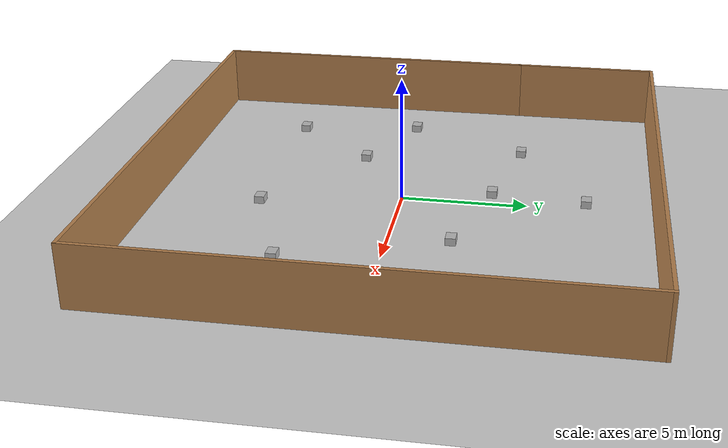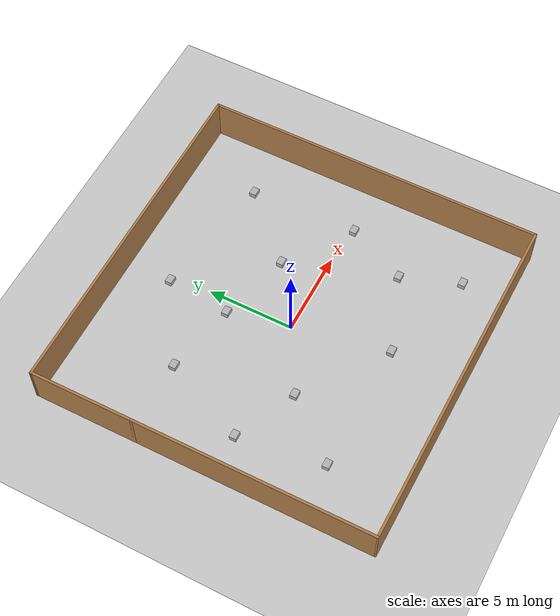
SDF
<sdf version="1.7">
 <world name="default">
  <light name="sun" type="directional">
   <pose>0 0 10 0 -0 0</pose>
   <diffuse>0.8 0.8 0.8 1</diffuse>
   <specular>0.2 0.2 0.2 1</specular>
   <attenuation>
    <range>1000</range>
    <constant>0.9</constant>
    <linear>0.01</linear>
    <quadratic>0.001</quadratic>
   </attenuation>
   <direction>-0.5 0.1 -0.9</direction>
   <spot><inner_angle>0</inner_angle><outer_angle>0</outer_angle><falloff>0</falloff></spot>
  </light>
  <model name="ground_plane">
   <static>1</static>
   <link name="link">
    <collision name="collision">
     <geometry><plane><normal>0 0 1</normal><size>100 100</size></plane></geometry>
     <surface>
      <contact><collide_bitmask>65535</collide_bitmask></contact>
      <friction><ode><mu>100</mu><mu2>50</mu2></ode></friction>
     </surface>
    </collision>
    <visual name="visual">
     <cast_shadows>0</cast_shadows>
     <geometry><plane><normal>0 0 1</normal><size>100 100</size></plane></geometry>
     <material>
      <script><uri>file://media/materials/scripts/gazebo.material</uri><name>Gazebo/Grey</name></script>
     </material>
    </visual>
   </link>
  </model>
  <gravity>0 0 -9.8</gravity>
  <magnetic_field>6e-06 2.3e-05 -4.2e-05</magnetic_field>
  <atmosphere type="adiabatic"/>
  <physics type="ode">
   <max_step_size>0.001</max_step_size>
   <real_time_factor>1</real_time_factor>
   <real_time_update_rate>1000</real_time_update_rate>
  </physics>
  <scene><ambient>0.4 0.4 0.4 1</ambient><background>0.7 0.7 0.7 1</background><shadows>1</shadows></scene>
  <spherical_coordinates>
   <surface_model>EARTH_WGS84</surface_model>
   <latitude_deg>0</latitude_deg>
   <longitude_deg>0</longitude_deg>
   <elevation>0</elevation>
   <heading_deg>0</heading_deg>
  </spherical_coordinates>
  <model name="Area_Wall">
   <pose>0.171387 0.070422 0 0 -0 0</pose>
   <link name="Wall_10">
    <collision name="Wall_10_Collision">
     <geometry><box><size>19.847 0.15 2.5</size></box></geometry>
     <pose>0 0 1.25 0 -0 0</pose>
    </collision>
    <visual name="Wall_10_Visual">
     <pose>0 0 1.25 0 -0 0</pose>
     <geometry><box><size>19.847 0.15 2.5</size></box></geometry>
     <material>
      <script><uri>file://media/materials/scripts/gazebo.material</uri><name>Gazebo/Wood</name></script>
      <ambient>1 1 1 1</ambient>
     </material>
     <meta><layer>0</layer></meta>
    </visual>
    <pose>0.036878 -9.83248 0 0 -0 -0.006092</pose>
   </link>
   <link name="Wall_11">
    <collision name="Wall_11_Collision">
     <geometry><box><size>19.935 0.15 2.5</size></box></geometry>
     <pose>0 0 1.25 0 -0 0</pose>
    </collision>
    <visual name="Wall_11_Visual">
     <pose>0 0 1.25 0 -0 0</pose>
     <geometry><box><size>19.935 0.15 2.5</size></box></geometry>
     <material>
      <script><uri>file://media/materials/scripts/gazebo.material</uri><name>Gazebo/Wood</name></script>
      <ambient>1 1 1 1</ambient>
     </material>
     <meta><layer>0</layer></meta>
    </visual>
    <pose>9.92521 1.9e-05 0 0 -0 1.5708</pose>
   </link>
   <link name="Wall_12">
    <collision name="Wall_12_Collision">
     <geometry><box><size>20 0.15 2.5</size></box></geometry>
     <pose>0 0 1.25 0 -0 0</pose>
    </collision>
    <visual name="Wall_12_Visual">
     <pose>0 0 1.25 0 -0 0</pose>
     <geometry><box><size>20 0.15 2.5</size></box></geometry>
     <material>
      <script><uri>file://media/materials/scripts/gazebo.material</uri><name>Gazebo/Wood</name></script>
      <ambient>1 1 1 1</ambient>
     </material>
     <meta><layer>0</layer></meta>
    </visual>
    <pose>0.000208 9.89251 0 0 -0 3.14159</pose>
   </link>
   <link name="Wall_14">
    <collision name="Wall_14_Collision">
     <geometry><box><size>6.12009 0.15 2.5</size></box></geometry>
     <pose>0 0 1.25 0 -0 0</pose>
    </collision>
    <visual name="Wall_14_Visual">
     <pose>0 0 1.25 0 -0 0</pose>
     <geometry><box><size>6.12009 0.15 2.5</size></box></geometry>
     <material>
      <script><uri>file://media/materials/scripts/gazebo.material</uri><name>Gazebo/Wood</name></script>
      <ambient>1 1 1 1</ambient>
     </material>
     <meta><layer>0</layer></meta>
    </visual>
    <pose>-9.90812 6.90751 0 0 -0 1.57638</pose>
   </link>
   <link name="Wall_9">
    <collision name="Wall_9_Collision">
     <geometry><box><size>13.8052 0.15 2.5</size></box></geometry>
     <pose>0 0 1.25 0 -0 0</pose>
    </collision>
    <visual name="Wall_9_Visual">
     <pose>0 0 1.25 0 -0 0</pose>
     <geometry><box><size>13.8052 0.15 2.5</size></box></geometry>
     <material>
      <script><uri>file://media/materials/scripts/gazebo.material</uri><name>Gazebo/Wood</name></script>
      <ambient>1 1 1 1</ambient>
     </material>
     <meta><layer>0</layer></meta>
    </visual>
    <pose>-9.85145 -2.90498 0 0 -0 -1.56494</pose>
   </link>
   <static>1</static>
  </model>
  <model name="cardboard_box">
   <pose>3.47149 2.39579 0.149 0 -0 0</pose>
   <link name="link">
    <inertial>
     <mass>2</mass>
     <inertia>
      <ixx>0.0416667</ixx>
      <ixy>0</ixy>
      <ixz>0</ixz>
      <iyy>0.0566667</iyy>
      <iyz>0</iyz>
      <izz>0.0683333</izz>
     </inertia>
    </inertial>
    <collision name="collision">
     <geometry><box><size>0.5 0.4 0.3</size></box></geometry>
     <surface>
      <friction><ode><mu>1</mu><mu2>1</mu2></ode></friction>
      <contact><ode><kp>1e+07</kp><kd>1</kd><min_depth>0.001</min_depth><max_vel>0.1</max_vel></ode></contact>
     </surface>
    </collision>
    <visual name="visual">
     <pose>0 0 -0.15 0 -0 0</pose>
     <geometry>
      <mesh><uri>model://cardboard_box/meshes/cardboard_box.dae</uri><scale>1.25932 1.00745 0.755591</scale></mesh>
     </geometry>
    </visual>
   </link>
  </model>
  <model name="cardboard_box_clone">
   <pose>-4.97696 4.45065 0.149 0 -0 0</pose>
   <link name="link">
    <inertial>
     <mass>2</mass>
     <inertia>
      <ixx>0.0416667</ixx>
      <ixy>0</ixy>
      <ixz>0</ixz>
      <iyy>0.0566667</iyy>
      <iyz>0</iyz>
      <izz>0.0683333</izz>
     </inertia>
    </inertial>
    <collision name="collision">
     <geometry><box><size>0.5 0.4 0.3</size></box></geometry>
     <surface>
      <friction><ode><mu>1</mu><mu2>1</mu2></ode></friction>
      <contact><ode><kp>1e+07</kp><kd>1</kd><min_depth>0.001</min_depth><max_vel>0.1</max_vel></ode></contact>
     </surface>
    </collision>
    <visual name="visual">
     <pose>0 0 -0.15 0 -0 0</pose>
     <geometry>
      <mesh><uri>model://cardboard_box/meshes/cardboard_box.dae</uri><scale>1.25932 1.00745 0.755591</scale></mesh>
     </geometry>
    </visual>
   </link>
  </model>
  <model name="cardboard_box_clone_0">
   <pose>-3.56443 -2.09488 0.149 0 -0 0</pose>
   <link name="link">
    <inertial>
     <mass>2</mass>
     <inertia>
      <ixx>0.0416667</ixx>
      <ixy>0</ixy>
      <ixz>0</ixz>
      <iyy>0.0566667</iyy>
      <iyz>0</iyz>
      <izz>0.0683333</izz>
     </inertia>
    </inertial>
    <collision name="collision">
     <geometry><box><size>0.5 0.4 0.3</size></box></geometry>
     <surface>
      <friction><ode><mu>1</mu><mu2>1</mu2></ode></friction>
      <contact><ode><kp>1e+07</kp><kd>1</kd><min_depth>0.001</min_depth><max_vel>0.1</max_vel></ode></contact>
     </surface>
    </collision>
    <visual name="visual">
     <pose>0 0 -0.15 0 -0 0</pose>
     <geometry>
      <mesh><uri>model://cardboard_box/meshes/cardboard_box.dae</uri><scale>1.25932 1.00745 0.755591</scale></mesh>
     </geometry>
    </visual>
   </link>
  </model>
  <model name="cardboard_box_clone_1">
   <pose>5.61144 -3.85418 0.149 0 -0 0</pose>
   <link name="link">
    <inertial>
     <mass>2</mass>
     <inertia>
      <ixx>0.0416667</ixx>
      <ixy>0</ixy>
      <ixz>0</ixz>
      <iyy>0.0566667</iyy>
      <iyz>0</iyz>
      <izz>0.0683333</izz>
     </inertia>
    </inertial>
    <collision name="collision">
     <geometry><box><size>0.5 0.4 0.3</size></box></geometry>
     <surface>
      <friction><ode><mu>1</mu><mu2>1</mu2></ode></friction>
      <contact><ode><kp>1e+07</kp><kd>1</kd><min_depth>0.001</min_depth><max_vel>0.1</max_vel></ode></contact>
     </surface>
    </collision>
    <visual name="visual">
     <pose>0 0 -0.15 0 -0 0</pose>
     <geometry>
      <mesh><uri>model://cardboard_box/meshes/cardboard_box.dae</uri><scale>1.25932 1.00745 0.755591</scale></mesh>
     </geometry>
    </visual>
   </link>
  </model>
  <model name="cardboard_box_clone_2">
   <pose>-0.775347 3.55592 0.149 0 -0 0</pose>
   <link name="link">
    <inertial>
     <mass>2</mass>
     <inertia>
      <ixx>0.0416667</ixx>
      <ixy>0</ixy>
      <ixz>0</ixz>
      <iyy>0.0566667</iyy>
      <iyz>0</iyz>
      <izz>0.0683333</izz>
     </inertia>
    </inertial>
    <collision name="collision">
     <geometry><box><size>0.5 0.4 0.3</size></box></geometry>
     <surface>
      <friction><ode><mu>1</mu><mu2>1</mu2></ode></friction>
      <contact><ode><kp>1e+07</kp><kd>1</kd><min_depth>0.001</min_depth><max_vel>0.1</max_vel></ode></contact>
     </surface>
    </collision>
    <visual name="visual">
     <pose>0 0 -0.15 0 -0 0</pose>
     <geometry>
      <mesh><uri>model://cardboard_box/meshes/cardboard_box.dae</uri><scale>1.25932 1.00745 0.755591</scale></mesh>
     </geometry>
    </visual>
   </link>
  </model>
  <model name="cardboard_box_clone_3">
   <pose>7.00705 5.99738 0.149 0 -0 0</pose>
   <link name="link">
    <inertial>
     <mass>2</mass>
     <inertia>
      <ixx>0.0416667</ixx>
      <ixy>0</ixy>
      <ixz>0</ixz>
      <iyy>0.0566667</iyy>
      <iyz>0</iyz>
      <izz>0.0683333</izz>
     </inertia>
    </inertial>
    <collision name="collision">
     <geometry><box><size>0.5 0.4 0.3</size></box></geometry>
     <surface>
      <friction><ode><mu>1</mu><mu2>1</mu2></ode></friction>
      <contact><ode><kp>1e+07</kp><kd>1</kd><min_depth>0.001</min_depth><max_vel>0.1</max_vel></ode></contact>
     </surface>
    </collision>
    <visual name="visual">
     <pose>0 0 -0.15 0 -0 0</pose>
     <geometry>
      <mesh><uri>model://cardboard_box/meshes/cardboard_box.dae</uri><scale>1.25932 1.00745 0.755591</scale></mesh>
     </geometry>
    </visual>
   </link>
  </model>
  <model name="cardboard_box_clone_4">
   <pose>-0.422214 7.30904 0.149 0 -0 0</pose>
   <link name="link">
    <inertial>
     <mass>2</mass>
     <inertia>
      <ixx>0.0416667</ixx>
      <ixy>0</ixy>
      <ixz>0</ixz>
      <iyy>0.0566667</iyy>
      <iyz>0</iyz>
      <izz>0.0683333</izz>
     </inertia>
    </inertial>
    <collision name="collision">
     <geometry><box><size>0.5 0.4 0.3</size></box></geometry>
     <surface>
      <friction><ode><mu>1</mu><mu2>1</mu2></ode></friction>
      <contact><ode><kp>1e+07</kp><kd>1</kd><min_depth>0.001</min_depth><max_vel>0.1</max_vel></ode></contact>
     </surface>
    </collision>
    <visual name="visual">
     <pose>0 0 -0.15 0 -0 0</pose>
     <geometry>
      <mesh><uri>model://cardboard_box/meshes/cardboard_box.dae</uri><scale>1.25932 1.00745 0.755591</scale></mesh>
     </geometry>
    </visual>
   </link>
  </model>
  <model name="cardboard_box_clone_5">
   <pose>-7.13705 -0.424385 0.149 0 -0 0</pose>
   <link name="link">
    <inertial>
     <mass>2</mass>
     <inertia>
      <ixx>0.0416667</ixx>
      <ixy>0</ixy>
      <ixz>0</ixz>
      <iyy>0.0566667</iyy>
      <iyz>0</iyz>
      <izz>0.0683333</izz>
     </inertia>
    </inertial>
    <collision name="collision">
     <geometry><box><size>0.5 0.4 0.3</size></box></geometry>
     <surface>
      <friction><ode><mu>1</mu><mu2>1</mu2></ode></friction>
      <contact><ode><kp>1e+07</kp><kd>1</kd><min_depth>0.001</min_depth><max_vel>0.1</max_vel></ode></contact>
     </surface>
    </collision>
    <visual name="visual">
     <pose>0 0 -0.15 0 -0 0</pose>
     <geometry>
      <mesh><uri>model://cardboard_box/meshes/cardboard_box.dae</uri><scale>1.25932 1.00745 0.755591</scale></mesh>
     </geometry>
    </visual>
   </link>
  </model>
  <model name="cardboard_box_clone_6">
   <pose>1.14179 -5.52174 0.149 0 -0 0</pose>
   <link name="link">
    <inertial>
     <mass>2</mass>
     <inertia>
      <ixx>0.0416667</ixx>
      <ixy>0</ixy>
      <ixz>0</ixz>
      <iyy>0.0566667</iyy>
      <iyz>0</iyz>
      <izz>0.0683333</izz>
     </inertia>
    </inertial>
    <collision name="collision">
     <geometry><box><size>0.5 0.4 0.3</size></box></geometry>
     <surface>
      <friction><ode><mu>1</mu><mu2>1</mu2></ode></friction>
      <contact><ode><kp>1e+07</kp><kd>1</kd><min_depth>0.001</min_depth><max_vel>0.1</max_vel></ode></contact>
     </surface>
    </collision>
    <visual name="visual">
     <pose>0 0 -0.15 0 -0 0</pose>
     <geometry>
      <mesh><uri>model://cardboard_box/meshes/cardboard_box.dae</uri><scale>1.25932 1.00745 0.755591</scale></mesh>
     </geometry>
    </visual>
   </link>
  </model>
  <model name="cardboard_box_clone_7">
   <pose>-6.39503 -5.42517 0.149 0 -0 0</pose>
   <link name="link">
    <inertial>
     <mass>2</mass>
     <inertia>
      <ixx>0.0416667</ixx>
      <ixy>0</ixy>
      <ixz>0</ixz>
      <iyy>0.0566667</iyy>
      <iyz>0</iyz>
      <izz>0.0683333</izz>
     </inertia>
    </inertial>
    <collision name="collision">
     <geometry><box><size>0.5 0.4 0.3</size></box></geometry>
     <surface>
      <friction><ode><mu>1</mu><mu2>1</mu2></ode></friction>
      <contact><ode><kp>1e+07</kp><kd>1</kd><min_depth>0.001</min_depth><max_vel>0.1</max_vel></ode></contact>
     </surface>
    </collision>
    <visual name="visual">
     <pose>0 0 -0.15 0 -0 0</pose>
     <geometry>
      <mesh><uri>model://cardboard_box/meshes/cardboard_box.dae</uri><scale>1.25932 1.00745 0.755591</scale></mesh>
     </geometry>
    </visual>
   </link>
  </model>
  <model name="cardboard_box_clone_8">
   <pose>7.25396 -0.295256 0.149 0 -0 0</pose>
   <link name="link">
    <inertial>
     <mass>2</mass>
     <inertia>
      <ixx>0.0416667</ixx>
      <ixy>0</ixy>
      <ixz>0</ixz>
      <iyy>0.0566667</iyy>
      <iyz>0</iyz>
      <izz>0.0683333</izz>
     </inertia>
    </inertial>
    <collision name="collision">
     <geometry><box><size>0.5 0.4 0.3</size></box></geometry>
     <surface>
      <friction><ode><mu>1</mu><mu2>1</mu2></ode></friction>
      <contact><ode><kp>1e+07</kp><kd>1</kd><min_depth>0.001</min_depth><max_vel>0.1</max_vel></ode></contact>
     </surface>
    </collision>
    <visual name="visual">
     <pose>0 0 -0.15 0 -0 0</pose>
     <geometry>
      <mesh><uri>model://cardboard_box/meshes/cardboard_box.dae</uri><scale>1.25932 1.00745 0.755591</scale></mesh>
     </geometry>
    </visual>
   </link>
  </model>
  <model name="cardboard_box_clone_9">
   <pose>6.85267 -7.18682 0.149 0 -0 0</pose>
   <link name="link">
    <inertial>
     <mass>2</mass>
     <inertia>
      <ixx>0.0416667</ixx>
      <ixy>0</ixy>
      <ixz>0</ixz>
      <iyy>0.0566667</iyy>
      <iyz>0</iyz>
      <izz>0.0683333</izz>
     </inertia>
    </inertial>
    <collision name="collision">
     <geometry><box><size>0.5 0.4 0.3</size></box></geometry>
     <surface>
      <friction><ode><mu>1</mu><mu2>1</mu2></ode></friction>
      <contact><ode><kp>1e+07</kp><kd>1</kd><min_depth>0.001</min_depth><max_vel>0.1</max_vel></ode></contact>
     </surface>
    </collision>
    <visual name="visual">
     <pose>0 0 -0.15 0 -0 0</pose>
     <geometry>
      <mesh><uri>model://cardboard_box/meshes/cardboard_box.dae</uri><scale>1.25932 1.00745 0.755591</scale></mesh>
     </geometry>
    </visual>
   </link>
  </model>
 </world>
</sdf>
